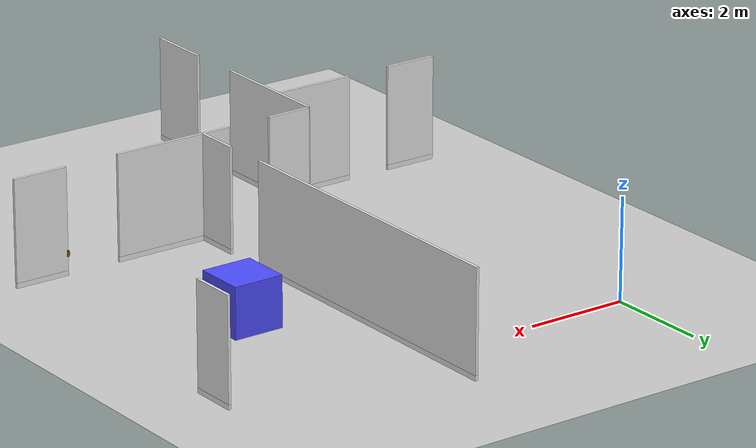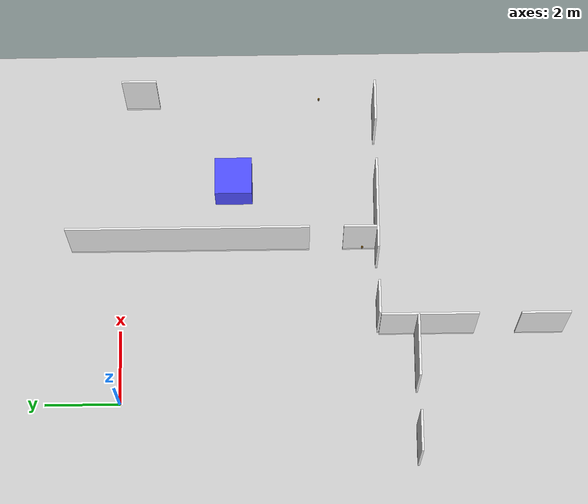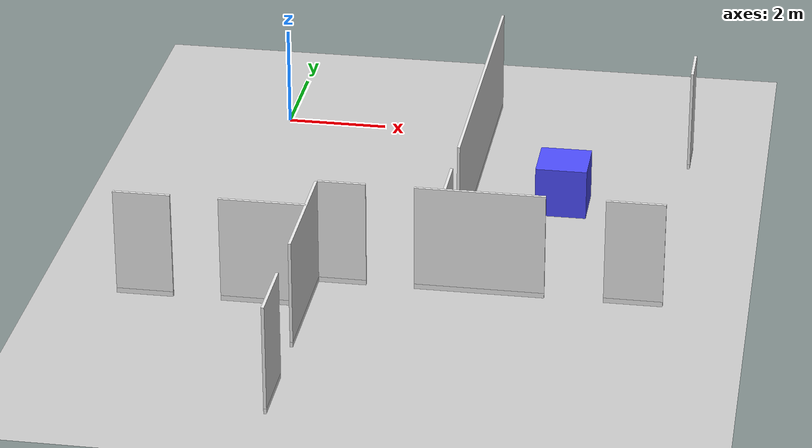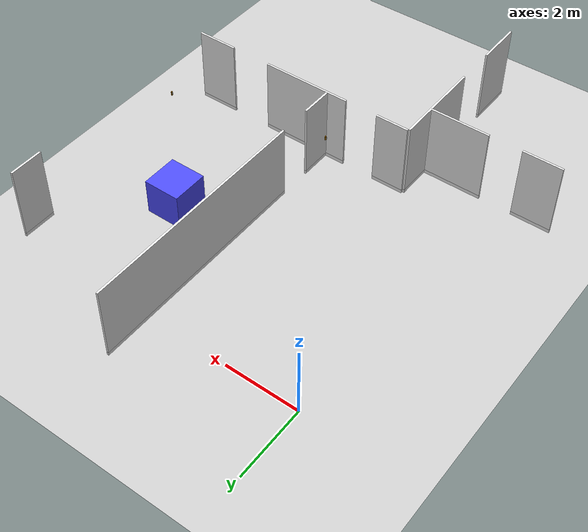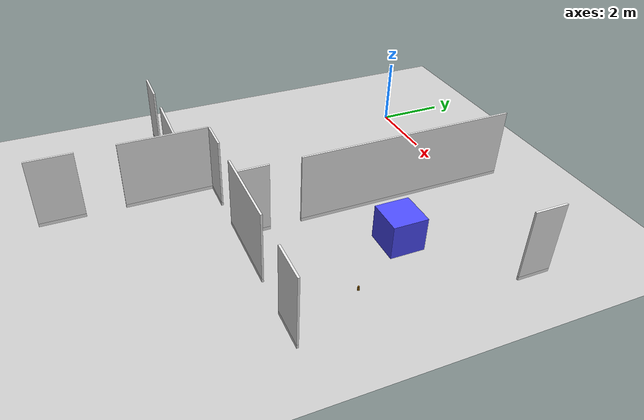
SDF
<sdf version="1.6">
 <world name="default">
  <model name="ground_plane">
   <static>1</static>
   <link name="link">
    <collision name="collision">
     <geometry><plane><normal>0 0 1</normal><size>100 100</size></plane></geometry>
     <surface><friction><ode><mu>100</mu><mu2>50</mu2></ode></friction></surface>
    </collision>
    <visual name="visual">
     <cast_shadows>0</cast_shadows>
     <geometry><plane><normal>0 0 1</normal><size>100 100</size></plane></geometry>
     <material>
      <script><uri>file://media/materials/scripts/gazebo.material</uri><name>Gazebo/Grey</name></script>
     </material>
    </visual>
   </link>
  </model>
  <model name="full_inside_wall">
   <link name="link">
    <inertial>
     <mass>50</mass>
     <inertia><ixx>1</ixx><ixy>0</ixy><ixz>0</ixz><iyy>1</iyy><iyz>0</iyz><izz>1</izz></inertia>
    </inertial>
    <visual name="x05y01_08_bottom_frame">
     <pose>4.075 3.215 0.05 0 -0 0</pose>
     <geometry><box><size>0.055 6.43 0.1</size></box></geometry>
     <material>
      <script><uri>model://base_materials/color/scripts</uri><name>hsr_color/white</name></script>
     </material>
    </visual>
    <collision name="x05y01_08_collision_bottom_frame">
     <pose>4.075 3.215 0.05 0 -0 0</pose>
     <geometry><box><size>0.055 6.43 0.1</size></box></geometry>
    </collision>
    <visual name="x05y01_08_wall">
     <pose>4.075 3.215 1.095 0 -0 0</pose>
     <geometry><box><size>0.055 6.43 1.99</size></box></geometry>
     <material>
      <script>
       <uri>model://base_materials/wall/scripts</uri>
       <uri>model://base_materials/wall/textures</uri>
       <name>wall/white_noise</name>
      </script>
     </material>
    </visual>
    <collision name="x05y01_08_collision_wall">
     <pose>4.075 3.215 1.095 0 -0 0</pose>
     <geometry><box><size>0.055 6.43 1.99</size></box></geometry>
    </collision>
    <visual name="x05y10_bottom_frame">
     <pose>4.075 7.78 0.05 0 -0 0</pose>
     <geometry><box><size>0.055 0.9 0.1</size></box></geometry>
     <material>
      <script><uri>model://base_materials/color/scripts</uri><name>hsr_color/white</name></script>
     </material>
    </visual>
    <collision name="x05y10_collision_bottom_frame">
     <pose>4.075 7.78 0.05 0 -0 0</pose>
     <geometry><box><size>0.055 0.9 0.1</size></box></geometry>
    </collision>
    <visual name="x05y10_wall">
     <pose>4.075 7.78 1.095 0 -0 0</pose>
     <geometry><box><size>0.055 0.9 1.99</size></box></geometry>
     <material>
      <script>
       <uri>model://base_materials/wall/scripts</uri>
       <uri>model://base_materials/wall/textures</uri>
       <name>wall/white_noise</name>
      </script>
     </material>
    </visual>
    <collision name="x05y10_collision_wall">
     <pose>4.075 7.78 1.095 0 -0 0</pose>
     <geometry><box><size>0.055 0.9 1.99</size></box></geometry>
    </collision>
    <visual name="x01_02_y09_bottom_frame">
     <pose>0.55 8.23 0.05 0 -0 1.5708</pose>
     <geometry><box><size>0.055 1.1 0.1</size></box></geometry>
     <material>
      <script><uri>model://base_materials/color/scripts</uri><name>hsr_color/white</name></script>
     </material>
    </visual>
    <collision name="x01_02_y09_collision_bottom_frame">
     <pose>0.55 8.23 0.05 0 -0 1.5708</pose>
     <geometry><box><size>0.055 1.1 0.1</size></box></geometry>
    </collision>
    <visual name="x01_02_y09_wall">
     <pose>0.55 8.23 1.095 0 -0 1.5708</pose>
     <geometry><box><size>0.055 1.1 1.99</size></box></geometry>
     <material>
      <script>
       <uri>model://base_materials/wall/scripts</uri>
       <uri>model://base_materials/wall/textures</uri>
       <name>wall/white_noise</name>
      </script>
     </material>
    </visual>
    <collision name="x01_02_y09_collision_wall">
     <pose>0.55 8.23 1.095 0 -0 1.5708</pose>
     <geometry><box><size>0.055 1.1 1.99</size></box></geometry>
    </collision>
    <visual name="x04_07_y09_bottom_frame">
     <pose>3.42 8.23 0.05 0 -0 1.5708</pose>
     <geometry><box><size>0.055 2.44 0.1</size></box></geometry>
     <material>
      <script><uri>model://base_materials/color/scripts</uri><name>hsr_color/white</name></script>
     </material>
    </visual>
    <collision name="x04_07_y09_collision_bottom_frame">
     <pose>3.42 8.23 0.05 0 -0 1.5708</pose>
     <geometry><box><size>0.055 2.44 0.1</size></box></geometry>
    </collision>
    <visual name="x04_07_y09_wall">
     <pose>3.42 8.23 1.095 0 -0 1.5708</pose>
     <geometry><box><size>0.055 2.44 1.99</size></box></geometry>
     <material>
      <script>
       <uri>model://base_materials/wall/scripts</uri>
       <uri>model://base_materials/wall/textures</uri>
       <name>wall/white_noise</name>
      </script>
     </material>
    </visual>
    <collision name="x04_07_y09_collision_wall">
     <pose>3.42 8.23 1.095 0 -0 1.5708</pose>
     <geometry><box><size>0.055 2.44 1.99</size></box></geometry>
    </collision>
    <visual name="x08y10a_bottom_frame">
     <pose>5.9925 8.23 0.05 0 -0 1.5708</pose>
     <geometry><box><size>0.055 0.9 0.1</size></box></geometry>
     <material>
      <script><uri>model://base_materials/color/scripts</uri><name>hsr_color/white</name></script>
     </material>
    </visual>
    <collision name="x08y10a_collision_bottom_frame">
     <pose>5.9925 8.23 0.05 0 -0 1.5708</pose>
     <geometry><box><size>0.055 0.9 0.1</size></box></geometry>
    </collision>
    <visual name="x08y10a_wall">
     <pose>5.9925 8.23 1.095 0 -0 1.5708</pose>
     <geometry><box><size>0.055 0.9 1.99</size></box></geometry>
     <material>
      <script>
       <uri>model://base_materials/wall/scripts</uri>
       <uri>model://base_materials/wall/textures</uri>
       <name>wall/white_noise</name>
      </script>
     </material>
    </visual>
    <collision name="x08y10a_collision_wall">
     <pose>5.9925 8.23 1.095 0 -0 1.5708</pose>
     <geometry><box><size>0.055 0.9 1.99</size></box></geometry>
    </collision>
    <visual name="x08y10a_bottom_frame">
     <pose>5.9925 8.23 0.05 0 -0 1.5708</pose>
     <geometry><box><size>0.055 0.9 0.1</size></box></geometry>
     <material>
      <script><uri>model://base_materials/color/scripts</uri><name>hsr_color/white</name></script>
     </material>
    </visual>
    <collision name="x08y10a_collision_bottom_frame">
     <pose>5.9925 8.23 0.05 0 -0 1.5708</pose>
     <geometry><box><size>0.055 0.9 0.1</size></box></geometry>
    </collision>
    <visual name="x08y10a_wall">
     <pose>5.9925 8.23 1.095 0 -0 1.5708</pose>
     <geometry><box><size>0.055 0.9 1.99</size></box></geometry>
     <material>
      <script>
       <uri>model://base_materials/wall/scripts</uri>
       <uri>model://base_materials/wall/textures</uri>
       <name>wall/white_noise</name>
      </script>
     </material>
    </visual>
    <collision name="x08y10a_collision_wall">
     <pose>5.9925 8.23 1.095 0 -0 1.5708</pose>
     <geometry><box><size>0.055 0.9 1.99</size></box></geometry>
    </collision>
    <visual name="x08y14_15_bottom_frame">
     <pose>6.47 12.54 0.05 0 -0 0</pose>
     <geometry><box><size>0.055 1.28 0.1</size></box></geometry>
     <material>
      <script><uri>model://base_materials/color/scripts</uri><name>hsr_color/white</name></script>
     </material>
    </visual>
    <collision name="x08y14_15_collision_bottom_frame">
     <pose>6.47 12.54 0.05 0 -0 0</pose>
     <geometry><box><size>0.055 1.28 0.1</size></box></geometry>
    </collision>
    <visual name="x08y14_15_wall">
     <pose>6.47 12.54 1.095 0 -0 0</pose>
     <geometry><box><size>0.055 1.28 1.99</size></box></geometry>
     <material>
      <script>
       <uri>model://base_materials/wall/scripts</uri>
       <uri>model://base_materials/wall/textures</uri>
       <name>wall/white_noise</name>
      </script>
     </material>
    </visual>
    <collision name="x08y14_15_collision_wall">
     <pose>6.47 12.54 1.095 0 -0 0</pose>
     <geometry><box><size>0.055 1.28 1.99</size></box></geometry>
    </collision>
    <visual name="x08y10b_12_bottom_frame">
     <pose>6.47 9.52875 0.05 0 -0 0</pose>
     <geometry><box><size>0.055 2.5425 0.1</size></box></geometry>
     <material>
      <script><uri>model://base_materials/color/scripts</uri><name>hsr_color/white</name></script>
     </material>
    </visual>
    <collision name="x08y10b_12_collision_bottom_frame">
     <pose>6.47 9.52875 0.05 0 -0 0</pose>
     <geometry><box><size>0.055 2.5425 0.1</size></box></geometry>
    </collision>
    <visual name="x08y10b_12_wall">
     <pose>6.47 9.52875 1.095 0 -0 0</pose>
     <geometry><box><size>0.055 2.5425 1.99</size></box></geometry>
     <material>
      <script>
       <uri>model://base_materials/wall/scripts</uri>
       <uri>model://base_materials/wall/textures</uri>
       <name>wall/white_noise</name>
      </script>
     </material>
    </visual>
    <collision name="x08y10b_12_collision_wall">
     <pose>6.47 9.52875 1.095 0 -0 0</pose>
     <geometry><box><size>0.055 2.5425 1.99</size></box></geometry>
    </collision>
    <visual name="x08_09y11b_bottom_frame">
     <pose>7.284 9.23 0.05 0 -0 1.5708</pose>
     <geometry><box><size>0.055 1.632 0.1</size></box></geometry>
     <material>
      <script><uri>model://base_materials/color/scripts</uri><name>hsr_color/white</name></script>
     </material>
    </visual>
    <collision name="x08_09y11b_collision_bottom_frame">
     <pose>7.284 9.23 0.05 0 -0 1.5708</pose>
     <geometry><box><size>0.055 1.632 0.1</size></box></geometry>
    </collision>
    <visual name="x08_09y11b_wall">
     <pose>7.284 9.23 1.095 0 -0 1.5708</pose>
     <geometry><box><size>0.055 1.632 1.99</size></box></geometry>
     <material>
      <script>
       <uri>model://base_materials/wall/scripts</uri>
       <uri>model://base_materials/wall/textures</uri>
       <name>wall/white_noise</name>
      </script>
     </material>
    </visual>
    <collision name="x08_09y11b_collision_wall">
     <pose>7.284 9.23 1.095 0 -0 1.5708</pose>
     <geometry><box><size>0.055 1.632 1.99</size></box></geometry>
    </collision>
    <visual name="x11_12y11_bottom_frame">
     <pose>9.5375 9.23 0.05 0 -0 1.5708</pose>
     <geometry><box><size>0.055 1.075 0.1</size></box></geometry>
     <material>
      <script><uri>model://base_materials/color/scripts</uri><name>hsr_color/white</name></script>
     </material>
    </visual>
    <collision name="x11_12y11_collision_bottom_frame">
     <pose>9.5375 9.23 0.05 0 -0 1.5708</pose>
     <geometry><box><size>0.055 1.075 0.1</size></box></geometry>
    </collision>
    <visual name="x11_12y11_wall">
     <pose>9.5375 9.23 1.095 0 -0 1.5708</pose>
     <geometry><box><size>0.055 1.075 1.99</size></box></geometry>
     <material>
      <script>
       <uri>model://base_materials/wall/scripts</uri>
       <uri>model://base_materials/wall/textures</uri>
       <name>wall/white_noise</name>
      </script>
     </material>
    </visual>
    <collision name="x11_12y11_collision_wall">
     <pose>9.5375 9.23 1.095 0 -0 1.5708</pose>
     <geometry><box><size>0.055 1.075 1.99</size></box></geometry>
    </collision>
    <velocity_decay><linear>0</linear><angular>0</angular></velocity_decay>
   </link>
   <static>1</static>
   <pose>8.33769 1.33864 0 0 -0 3.14132</pose>
  </model>
  <model name="static_box_2">
   <link name="link">
    <inertial>
     <mass>100</mass>
     <inertia>
      <ixx>0.166667</ixx>
      <ixy>0</ixy>
      <ixz>0</ixz>
      <iyy>0.166667</iyy>
      <iyz>0</iyz>
      <izz>0.166667</izz>
     </inertia>
    </inertial>
    <visual name="visual">
     <geometry><box><size>1 1 1</size></box></geometry>
     <material>
      <script><name>Gazebo/Grey</name><uri>file://media/materials/scripts/gazebo.material</uri></script>
      <ambient>0.3 0.3 1 1</ambient>
      <diffuse>0.7 0.7 0.7 1</diffuse>
      <specular>0.01 0.01 0.01 1</specular>
      <emissive>0 0 0 1</emissive>
      <shader type="vertex"><normal_map>__default__</normal_map></shader>
     </material>
    </visual>
    <collision name="collision">
     <geometry><box><size>1 1 1</size></box></geometry>
     <surface>
      <friction>
       <ode><mu>1</mu><mu2>1</mu2><fdir1>0 0 0</fdir1><slip1>0</slip1><slip2>0</slip2></ode>
       <torsional>
        <coefficient>1</coefficient>
        <patch_radius>0</patch_radius>
        <surface_radius>0</surface_radius>
        <use_patch_radius>1</use_patch_radius>
        <ode><slip>0</slip></ode>
       </torsional>
      </friction>
      <bounce><restitution_coefficient>0</restitution_coefficient><threshold>1e+06</threshold></bounce>
      <contact>
       <collide_without_contact>0</collide_without_contact>
       <collide_without_contact_bitmask>1</collide_without_contact_bitmask>
       <collide_bitmask>1</collide_bitmask>
       <ode>
        <soft_cfm>0</soft_cfm>
        <soft_erp>0.2</soft_erp>
        <kp>1e+13</kp>
        <kd>1</kd>
        <max_vel>0.01</max_vel>
        <min_depth>0</min_depth>
       </ode>
       <bullet>
        <split_impulse>1</split_impulse>
        <split_impulse_penetration_threshold>-0.01</split_impulse_penetration_threshold>
        <soft_cfm>0</soft_cfm>
        <soft_erp>0.2</soft_erp>
        <kp>1e+13</kp>
        <kd>1</kd>
       </bullet>
      </contact>
     </surface>
    </collision>
   </link>
   <static>0</static>
   <pose>6.05352 -3.06141 0.499998 -1e-06 -1.4e-05 0.000861</pose>
  </model>
  <model name="full_wall_55_920_2090">
   <link name="link">
    <inertial>
     <mass>50</mass>
     <inertia><ixx>1</ixx><ixy>0</ixy><ixz>0</ixz><iyy>1</iyy><iyz>0</iyz><izz>1</izz></inertia>
    </inertial>
    <visual name="bottom_frame">
     <pose>0 0 0.05 0 -0 0</pose>
     <geometry><box><size>0.055 0.92 0.1</size></box></geometry>
     <material>
      <script><uri>model://base_materials/color/scripts</uri><name>hsr_color/white</name></script>
     </material>
    </visual>
    <collision name="collision_bottom_frame">
     <pose>0 0 0.05 0 -0 0</pose>
     <geometry><box><size>0.055 0.92 0.1</size></box></geometry>
    </collision>
    <visual name="wall">
     <pose>0 0 1.095 0 -0 0</pose>
     <geometry><box><size>0.055 0.92 1.99</size></box></geometry>
     <material>
      <script>
       <uri>model://base_materials/wall/scripts</uri>
       <uri>model://base_materials/wall/textures</uri>
       <name>wall/white_noise</name>
      </script>
     </material>
    </visual>
    <collision name="collision_wall">
     <pose>0 0 1.095 0 -0 0</pose>
     <geometry><box><size>0.055 0.92 1.99</size></box></geometry>
    </collision>
    <velocity_decay><linear>0</linear><angular>0</angular></velocity_decay>
   </link>
   <static>1</static>
   <pose>8.36232 -0.582065 0 0 -0 0</pose>
  </model>
  <model name="bottle_clone">
   <link name="link">
    <inertial>
     <mass>0.05</mass>
     <inertia><ixx>0.00058</ixx><ixy>0</ixy><ixz>0</ixz><iyy>0.00058</iyy><iyz>0</iyz><izz>0.00016</izz></inertia>
    </inertial>
    <visual name="top">
     <pose>0 0 0.0555 0 -0 0</pose>
     <geometry><cylinder><radius>0.019</radius><length>0.016</length></cylinder></geometry>
     <material>
      <ambient>1 0.647 0 1</ambient>
      <diffuse>0.5 0.3235 0 1</diffuse>
      <specular>0.1 0.1 0.1 1</specular>
      <emissive>0 0 0 0</emissive>
     </material>
    </visual>
    <collision name="collision_top">
     <pose>0 0 0.0555 0 -0 0</pose>
     <geometry><cylinder><radius>0.019</radius><length>0.016</length></cylinder></geometry>
     <surface>
      <bounce><restitution_coefficient>0.2</restitution_coefficient><threshold>0</threshold></bounce>
      <contact><ode><kp>10000</kp><max_vel>10</max_vel></ode></contact>
     </surface>
    </collision>
    <visual name="bottom">
     <geometry><cylinder><radius>0.0245</radius><length>0.095</length></cylinder></geometry>
     <material>
      <ambient>1 0.7 0.3 1</ambient>
      <diffuse>0.5 0.3235 0 1</diffuse>
      <specular>0.1 0.1 0.1 1</specular>
      <emissive>0 0 0 0</emissive>
     </material>
    </visual>
    <collision name="collision_bottom">
     <geometry><cylinder><radius>0.0245</radius><length>0.095</length></cylinder></geometry>
     <surface>
      <bounce><restitution_coefficient>0.2</restitution_coefficient><threshold>0</threshold></bounce>
      <contact><ode><kp>100000</kp><max_vel>10</max_vel></ode></contact>
     </surface>
    </collision>
    <velocity_decay><linear>0</linear><angular>0</angular></velocity_decay>
    <visual name="marker_4000">
     <pose>0.0245 0 0 0 1.57 3.141</pose>
     <geometry><box><size>0.045 0.045 0.0001</size></box></geometry>
     <material>
      <script>
       <uri>model://marker/4000/scripts</uri>
       <uri>model://marker/4000/textures</uri>
       <name>Marker/4000</name>
      </script>
     </material>
    </visual>
   </link>
   <static>0</static>
   <pose>8.16129 -5.39414 1.0975 9e-06 -5e-06 -3.072</pose>
  </model>
  <model name="bottle_clone_3">
   <link name="link">
    <inertial>
     <mass>0.05</mass>
     <inertia><ixx>0.00058</ixx><ixy>0</ixy><ixz>0</ixz><iyy>0.00058</iyy><iyz>0</iyz><izz>0.00016</izz></inertia>
    </inertial>
    <visual name="top">
     <pose>0 0 0.0555 0 -0 0</pose>
     <geometry><cylinder><radius>0.019</radius><length>0.016</length></cylinder></geometry>
     <material>
      <ambient>1 0.647 0 1</ambient>
      <diffuse>0.5 0.3235 0 1</diffuse>
      <specular>0.1 0.1 0.1 1</specular>
      <emissive>0 0 0 0</emissive>
     </material>
    </visual>
    <collision name="collision_top">
     <pose>0 0 0.0555 0 -0 0</pose>
     <geometry><cylinder><radius>0.019</radius><length>0.016</length></cylinder></geometry>
     <surface>
      <bounce><restitution_coefficient>0.2</restitution_coefficient><threshold>0</threshold></bounce>
      <contact><ode><kp>10000</kp><max_vel>10</max_vel></ode></contact>
     </surface>
    </collision>
    <visual name="bottom">
     <geometry><cylinder><radius>0.0245</radius><length>0.095</length></cylinder></geometry>
     <material>
      <ambient>1 0.7 0.3 1</ambient>
      <diffuse>0.5 0.3235 0 1</diffuse>
      <specular>0.1 0.1 0.1 1</specular>
      <emissive>0 0 0 0</emissive>
     </material>
    </visual>
    <collision name="collision_bottom">
     <geometry><cylinder><radius>0.0245</radius><length>0.095</length></cylinder></geometry>
     <surface>
      <bounce><restitution_coefficient>0.2</restitution_coefficient><threshold>0</threshold></bounce>
      <contact><ode><kp>100000</kp><max_vel>10</max_vel></ode></contact>
     </surface>
    </collision>
    <velocity_decay><linear>0</linear><angular>0</angular></velocity_decay>
    <visual name="marker_4000">
     <pose>0.0245 0 0 0 1.57 3.141</pose>
     <geometry><box><size>0.045 0.045 0.0001</size></box></geometry>
     <material>
      <script>
       <uri>model://marker/4000/scripts</uri>
       <uri>model://marker/4000/textures</uri>
       <name>Marker/4000</name>
      </script>
     </material>
    </visual>
   </link>
   <static>0</static>
   <pose>3.99726 -6.49087 0.9865 6e-06 -6e-06 -3.10329</pose>
  </model>
 </world>
</sdf>
